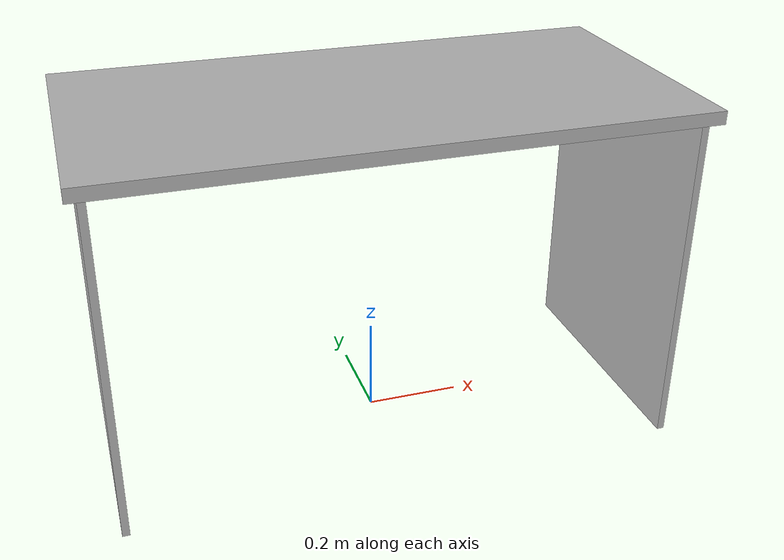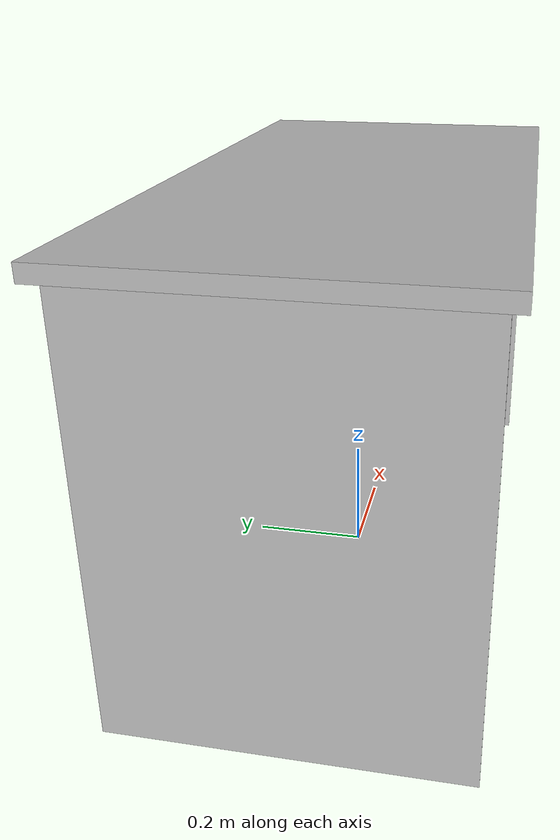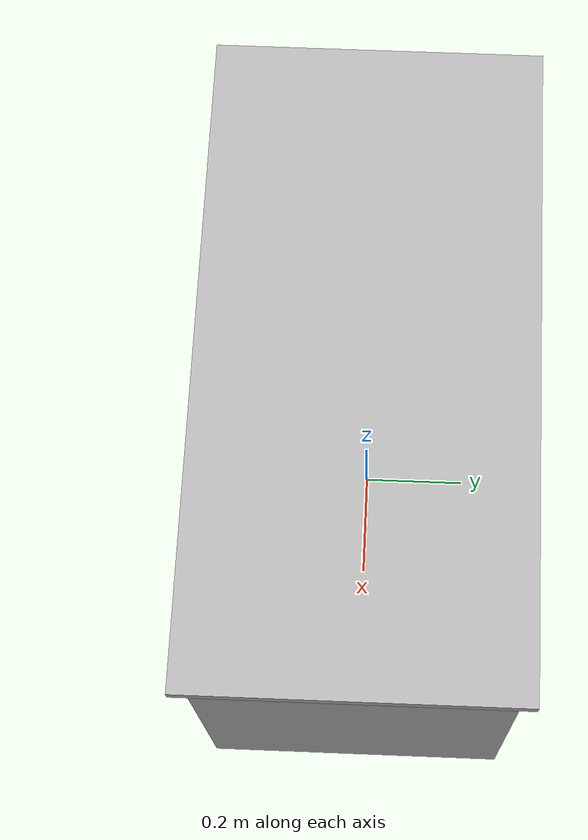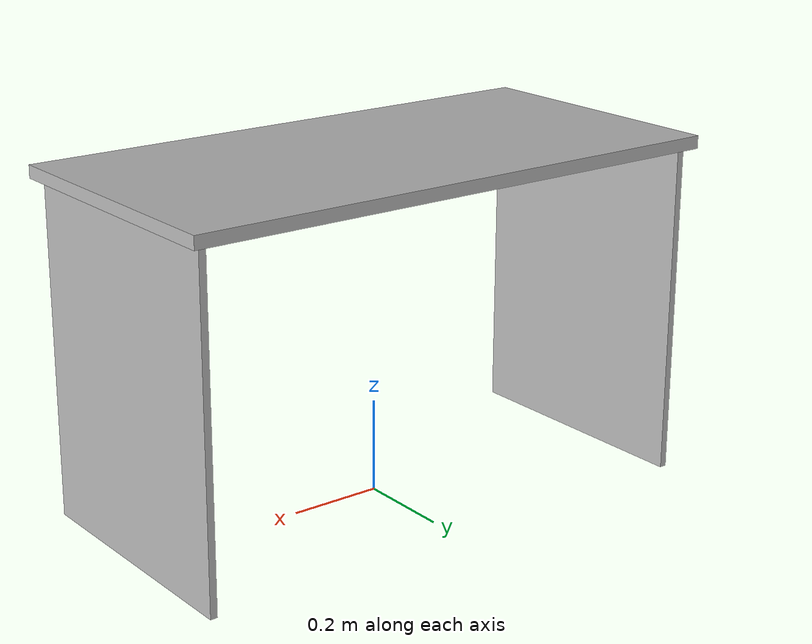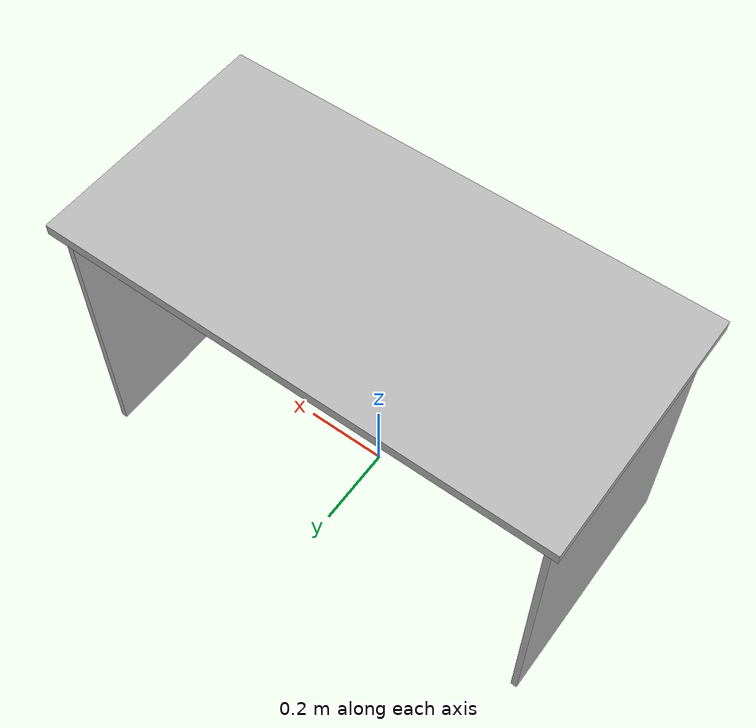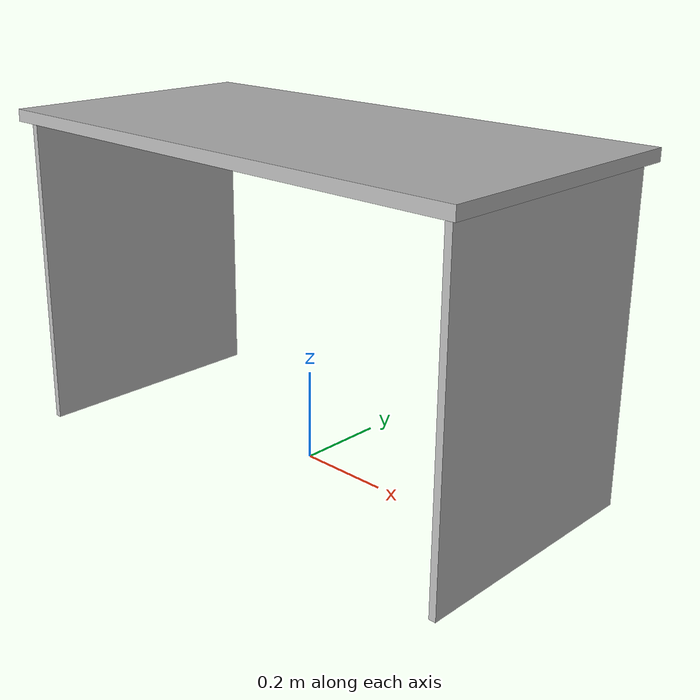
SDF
<?xml version="1.0"?>
<sdf version="1.6">
  <model name="rwc2019/desk">
    <link name="1_link">
      <collision name="1_col">
        <geometry>
          <box>
            <size>1.2 0.6 0.027</size>
          </box>
        </geometry>
      </collision>
      <visual name="1_vis">
        <geometry>
          <box>
            <size>1.2 0.6 0.027</size>
          </box>
        </geometry>
      </visual>
      <pose>0.0 0.0 0.7185 0 0 0</pose>
    </link>
    <link name="2_link">
      <collision name="2_col">
        <geometry>
          <box>
            <size>0.015 0.56 0.705</size>
          </box>
        </geometry>
      </collision>
      <visual name="2_vis">
        <geometry>
          <box>
            <size>0.015 0.56 0.705</size>
          </box>
        </geometry>
      </visual>
      <pose>-0.5725 0.0 0.3525 0 0 0</pose>
    </link>
    <link name="3_link">
      <collision name="3_col">
        <geometry>
          <box>
            <size>0.015 0.56 0.705</size>
          </box>
        </geometry>
      </collision>
      <visual name="3_vis">
        <geometry>
          <box>
            <size>0.015 0.56 0.705</size>
          </box>
        </geometry>
      </visual>
      <pose>0.5725 0.0 0.3525 0 0 0</pose>
    </link>
    <link name="on_top_of">
      <virtual_volume name="on_top_of_vv">
        <geometry>
          <box>
            <size>1.16 0.54 0.25</size>
          </box>
        </geometry>
        <pose>0.02 0.0 0.877 0 0 0</pose>
      </virtual_volume>
    </link>
    <link name="in_front_of">
      <virtual_volume name="in_front_of_vv">
        <geometry>
          <box>
            <size>0.6 0.2 0.01</size>
          </box>
        </geometry>
        <pose>0.0 0.8 0.005 0 0 0</pose>
      </virtual_volume>
    </link>
    <static>true</static>
  </model>
</sdf>
